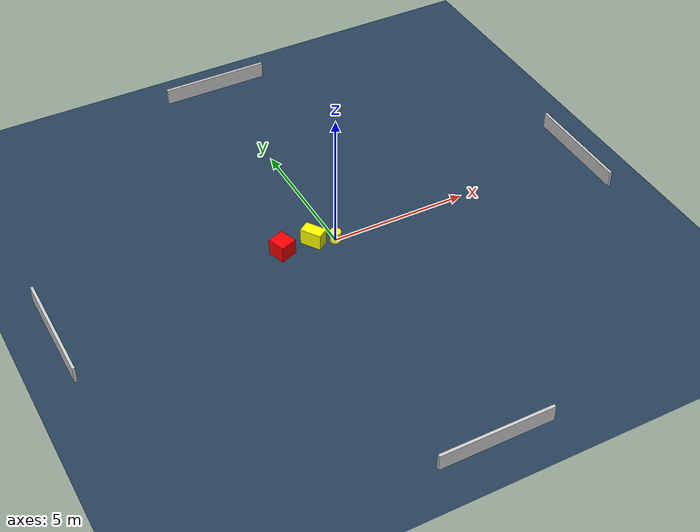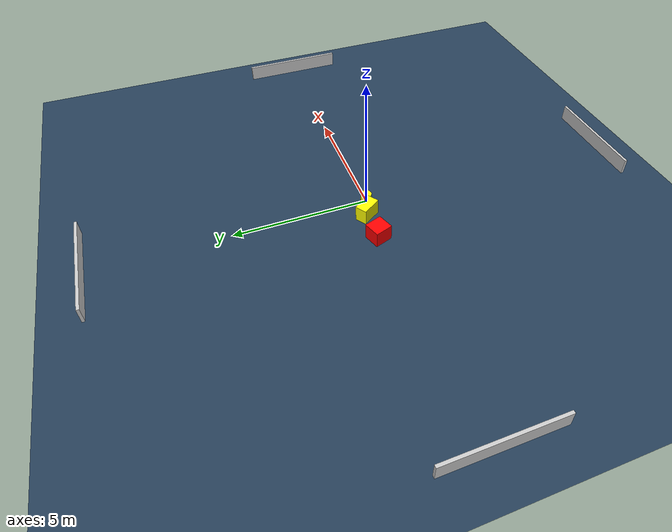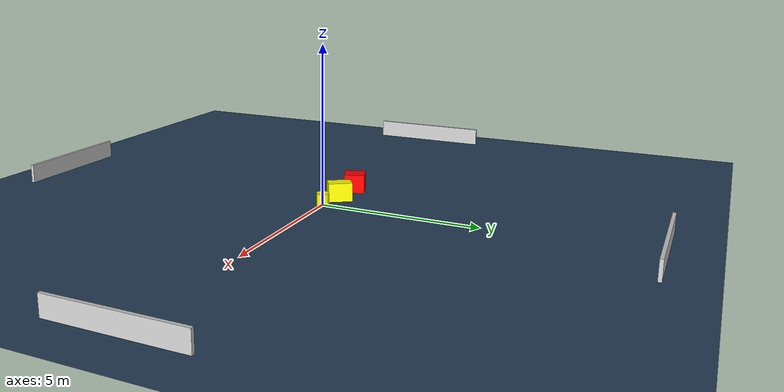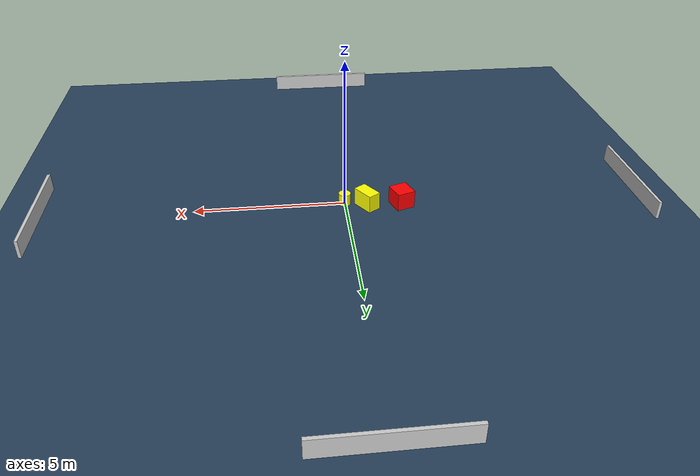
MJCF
<?xml version="1.0" ?>
<mujoco model="generated_environment">
  <option timestep="0.01" integrator="RK4" cone="elliptic"/>
  <default>
    <geom density="1"/>
  </default>
  <asset>
    <texture builtin="gradient" height="3072" name="skybox" rgb1="0.3 0.5 0.7" rgb2="0 0 0" type="skybox" width="512"/>
    <texture builtin="checker" height="300" name="groundplane" rgb1="0.2 0.3 0.4" rgb2="0.1 0.2 0.3" type="2d" width="300"/>
    <material name="groundplane" reflectance="0.2" texrepeat="5 5" texture="groundplane"/>
  </asset>
  <worldbody>
    <light dir="0 0 -1" directional="true" pos="0 0 1.5"/>
    <geom condim="3" friction="0.5 0.005 0.001" material="groundplane" name="floor" pos="0 0 0" size="0 0 0.05" type="plane"/>
    <body name="walls">
      <geom name="wall_1" condim="4" pos="-10.0 0.0 0.3" rgba="0.800000011920929 0.800000011920929 0.800000011920929 1.0" size="0.05 2.0 0.3" type="box"/>
      <geom name="wall_2" condim="4" pos="10.0 0.0 0.3" rgba="0.800000011920929 0.800000011920929 0.800000011920929 1.0" size="0.05 2.0 0.3" type="box"/>
      <geom name="wall_3" condim="4" pos="0.0 -10.0 0.3" rgba="0.800000011920929 0.800000011920929 0.800000011920929 1.0" size="2.0 0.05 0.3" type="box"/>
      <geom name="wall_4" condim="4" pos="0.0 10.0 0.3" rgba="0.800000011920929 0.800000011920929 0.800000011920929 1.0" size="2.0 0.05 0.3" type="box"/>
    </body>
    <body name="robot">
      <joint name="joint_x" type="slide" pos="0 0 0" axis="1 0 0"/>
      <joint name="joint_y" type="slide" pos="0 0 0" axis="0 1 0"/>
      <geom name="robot" type="cylinder" pos="0.0 0.0 0.2" size="0.2 0.2 0.0" mass="5.0" friction="1.0 0.005 0.0001" condim="4" rgba="1.0 1.0 0.0 1.0"/>
    </body>
    <body name="obstacle_1_movable">
      <geom name="obstacle_1_movable" condim="4" pos="-0.7176627383929326 0.2369672350631244 0.3" euler="0 0 33.773921569403896" friction="0.0 0.005 0.001" rgba="1.0 1.0 0.0 1.0" size="0.22134532206794655 0.3802958721708702 0.3" type="box" mass="0.1"/>
      <joint type="free"/>
    </body>
    <body name="obstacle_2_static">
      <geom name="obstacle_2_static" condim="4" pos="-1.8799210083311493 0.2526215384904068 0.3" euler="0 0 289.0728261953592" friction="0.0 0.005 0.001" rgba="1.0 0.0 0.0 1.0" size="0.32873070843420404 0.3092522159607213 0.3" type="box"/>
    </body>
  </worldbody>
  <actuator>
    <motor name="actuator_x" joint="joint_x" gear="1" ctrlrange="-1 1"/>
    <motor name="actuator_y" joint="joint_y" gear="1" ctrlrange="-1 1"/>
  </actuator>
</mujoco>
